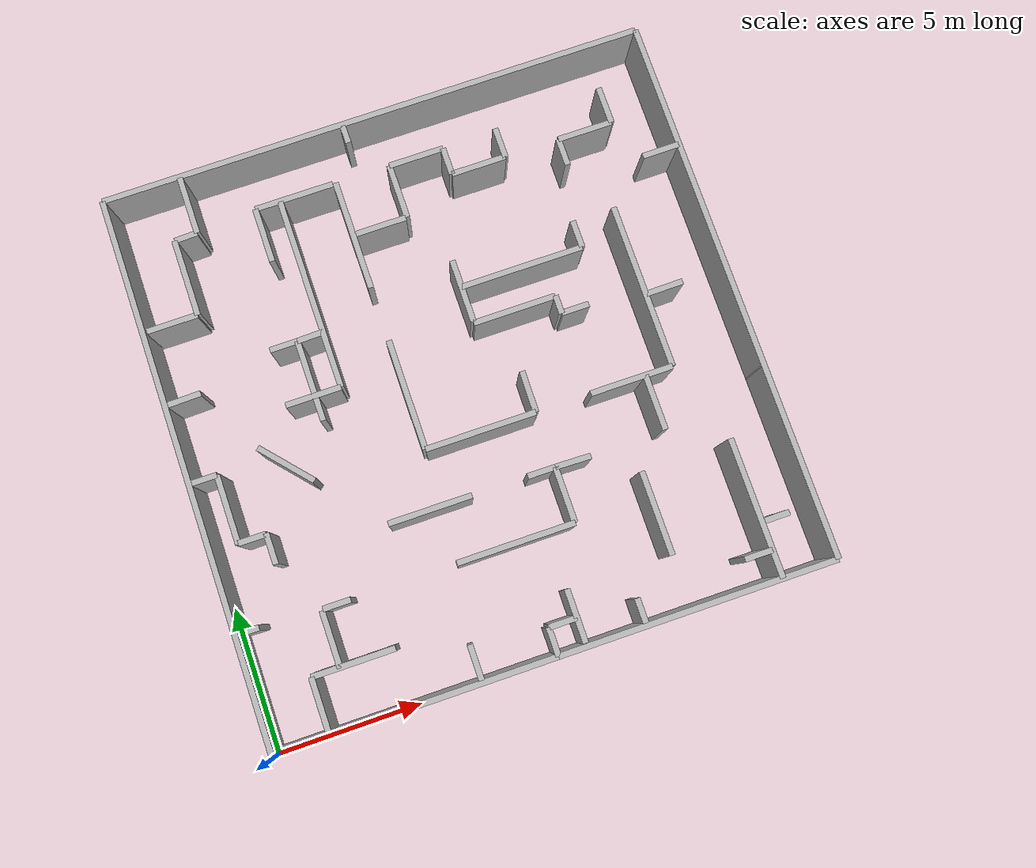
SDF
<?xml version="1.0" ?>
<sdf version="1.6">
  <model name="maze4_lines">
    <static>true</static>
    <link name="wall_0">
      <pose>4.919999999999999 0.12 1.25 0 0 0.0</pose>
      <collision name="collision">
        <geometry>
          <box><size>9.6 0.2 2.5</size></box>
        </geometry>
      </collision>
      <visual name="visual">
        <geometry>
          <box><size>9.6 0.2 2.5</size></box>
        </geometry>
        <material>
          <ambient>0.7 0.7 0.7 1</ambient>
          <diffuse>0.7 0.7 0.7 1</diffuse>
        </material>
      </visual>
    </link>
    <link name="wall_1">
      <pose>14.52 0.12 1.25 0 0 0.0</pose>
      <collision name="collision">
        <geometry>
          <box><size>9.600000000000001 0.2 2.5</size></box>
        </geometry>
      </collision>
      <visual name="visual">
        <geometry>
          <box><size>9.600000000000001 0.2 2.5</size></box>
        </geometry>
        <material>
          <ambient>0.7 0.7 0.7 1</ambient>
          <diffuse>0.7 0.7 0.7 1</diffuse>
        </material>
      </visual>
    </link>
    <link name="wall_2">
      <pose>10.2 1.08 1.25 0 0 0.0</pose>
      <collision name="collision">
        <geometry>
          <box><size>0.9600000000000009 0.2 2.5</size></box>
        </geometry>
      </collision>
      <visual name="visual">
        <geometry>
          <box><size>0.9600000000000009 0.2 2.5</size></box>
        </geometry>
        <material>
          <ambient>0.7 0.7 0.7 1</ambient>
          <diffuse>0.7 0.7 0.7 1</diffuse>
        </material>
      </visual>
    </link>
    <link name="wall_3">
      <pose>16.919999999999998 1.08 1.25 0 0 0.0</pose>
      <collision name="collision">
        <geometry>
          <box><size>0.9600000000000009 0.2 2.5</size></box>
        </geometry>
      </collision>
      <visual name="visual">
        <geometry>
          <box><size>0.9600000000000009 0.2 2.5</size></box>
        </geometry>
        <material>
          <ambient>0.7 0.7 0.7 1</ambient>
          <diffuse>0.7 0.7 0.7 1</diffuse>
        </material>
      </visual>
    </link>
    <link name="wall_4">
      <pose>3.45000069 2.04 1.25 0 0 0.0</pose>
      <collision name="collision">
        <geometry>
          <box><size>2.8509105000000003 0.2 2.5</size></box>
        </geometry>
      </collision>
      <visual name="visual">
        <geometry>
          <box><size>2.8509105000000003 0.2 2.5</size></box>
        </geometry>
        <material>
          <ambient>0.7 0.7 0.7 1</ambient>
          <diffuse>0.7 0.7 0.7 1</diffuse>
        </material>
      </visual>
    </link>
    <link name="wall_5">
      <pose>17.88 2.04 1.25 0 0 0.0</pose>
      <collision name="collision">
        <geometry>
          <box><size>0.9600000000000009 0.2 2.5</size></box>
        </geometry>
      </collision>
      <visual name="visual">
        <geometry>
          <box><size>0.9600000000000009 0.2 2.5</size></box>
        </geometry>
        <material>
          <ambient>0.7 0.7 0.7 1</ambient>
          <diffuse>0.7 0.7 0.7 1</diffuse>
        </material>
      </visual>
    </link>
    <link name="wall_6">
      <pose>3.5148482999999997 3.96 1.25 0 0 0.0</pose>
      <collision name="collision">
        <geometry>
          <box><size>0.9508737599999995 0.2 2.5</size></box>
        </geometry>
      </collision>
      <visual name="visual">
        <geometry>
          <box><size>0.9508737599999995 0.2 2.5</size></box>
        </geometry>
        <material>
          <ambient>0.7 0.7 0.7 1</ambient>
          <diffuse>0.7 0.7 0.7 1</diffuse>
        </material>
      </visual>
    </link>
    <link name="wall_7">
      <pose>9.6231039 3.96 1.25 0 0 0.0</pose>
      <collision name="collision">
        <geometry>
          <box><size>4.0690218 0.2 2.5</size></box>
        </geometry>
      </collision>
      <visual name="visual">
        <geometry>
          <box><size>4.0690218 0.2 2.5</size></box>
        </geometry>
        <material>
          <ambient>0.7 0.7 0.7 1</ambient>
          <diffuse>0.7 0.7 0.7 1</diffuse>
        </material>
      </visual>
    </link>
    <link name="wall_8">
      <pose>0.6000000000000001 9.191194199999998 1.25 0 0 0.0</pose>
      <collision name="collision">
        <geometry>
          <box><size>0.9600000000000001 0.2 2.5</size></box>
        </geometry>
      </collision>
      <visual name="visual">
        <geometry>
          <box><size>0.9600000000000001 0.2 2.5</size></box>
        </geometry>
        <material>
          <ambient>0.7 0.7 0.7 1</ambient>
          <diffuse>0.7 0.7 0.7 1</diffuse>
        </material>
      </visual>
    </link>
    <link name="wall_9">
      <pose>7.32 5.88 1.25 0 0 0.0</pose>
      <collision name="collision">
        <geometry>
          <box><size>2.88 0.2 2.5</size></box>
        </geometry>
      </collision>
      <visual name="visual">
        <geometry>
          <box><size>2.88 0.2 2.5</size></box>
        </geometry>
        <material>
          <ambient>0.7 0.7 0.7 1</ambient>
          <diffuse>0.7 0.7 0.7 1</diffuse>
        </material>
      </visual>
    </link>
    <link name="wall_10">
      <pose>11.16 5.88 1.25 0 0 0.0</pose>
      <collision name="collision">
        <geometry>
          <box><size>0.9599999999999991 0.2 2.5</size></box>
        </geometry>
      </collision>
      <visual name="visual">
        <geometry>
          <box><size>0.9599999999999991 0.2 2.5</size></box>
        </geometry>
        <material>
          <ambient>0.7 0.7 0.7 1</ambient>
          <diffuse>0.7 0.7 0.7 1</diffuse>
        </material>
      </visual>
    </link>
    <link name="wall_11">
      <pose>1.56 6.84 1.25 0 0 0.0</pose>
      <collision name="collision">
        <geometry>
          <box><size>0.96 0.2 2.5</size></box>
        </geometry>
      </collision>
      <visual name="visual">
        <geometry>
          <box><size>0.96 0.2 2.5</size></box>
        </geometry>
        <material>
          <ambient>0.7 0.7 0.7 1</ambient>
          <diffuse>0.7 0.7 0.7 1</diffuse>
        </material>
      </visual>
    </link>
    <link name="wall_12">
      <pose>9.719999999999999 7.8 1.25 0 0 0.0</pose>
      <collision name="collision">
        <geometry>
          <box><size>3.839999999999999 0.2 2.5</size></box>
        </geometry>
      </collision>
      <visual name="visual">
        <geometry>
          <box><size>3.839999999999999 0.2 2.5</size></box>
        </geometry>
        <material>
          <ambient>0.7 0.7 0.7 1</ambient>
          <diffuse>0.7 0.7 0.7 1</diffuse>
        </material>
      </visual>
    </link>
    <link name="wall_13">
      <pose>14.999999999999998 7.8 1.25 0 0 0.0</pose>
      <collision name="collision">
        <geometry>
          <box><size>2.879999999999999 0.2 2.5</size></box>
        </geometry>
      </collision>
      <visual name="visual">
        <geometry>
          <box><size>2.879999999999999 0.2 2.5</size></box>
        </geometry>
        <material>
          <ambient>0.7 0.7 0.7 1</ambient>
          <diffuse>0.7 0.7 0.7 1</diffuse>
        </material>
      </visual>
    </link>
    <link name="wall_14">
      <pose>4.8571979999999995 10.6575822 1.25 0 0 0.0</pose>
      <collision name="collision">
        <geometry>
          <box><size>1.9199999999999995 0.2 2.5</size></box>
        </geometry>
      </collision>
      <visual name="visual">
        <geometry>
          <box><size>1.9199999999999995 0.2 2.5</size></box>
        </geometry>
        <material>
          <ambient>0.7 0.7 0.7 1</ambient>
          <diffuse>0.7 0.7 0.7 1</diffuse>
        </material>
      </visual>
    </link>
    <link name="wall_15">
      <pose>14.04 10.68 1.25 0 0 0.0</pose>
      <collision name="collision">
        <geometry>
          <box><size>0.9600000000000009 0.2 2.5</size></box>
        </geometry>
      </collision>
      <visual name="visual">
        <geometry>
          <box><size>0.9600000000000009 0.2 2.5</size></box>
        </geometry>
        <material>
          <ambient>0.7 0.7 0.7 1</ambient>
          <diffuse>0.7 0.7 0.7 1</diffuse>
        </material>
      </visual>
    </link>
    <link name="wall_16">
      <pose>12.1079556 11.297727599999998 1.25 0 0 0.0</pose>
      <collision name="collision">
        <geometry>
          <box><size>2.880000000000001 0.2 2.5</size></box>
        </geometry>
      </collision>
      <visual name="visual">
        <geometry>
          <box><size>2.880000000000001 0.2 2.5</size></box>
        </geometry>
        <material>
          <ambient>0.7 0.7 0.7 1</ambient>
          <diffuse>0.7 0.7 0.7 1</diffuse>
        </material>
      </visual>
    </link>
    <link name="wall_17">
      <pose>4.4399999999999995 12.6 1.25 0 0 0.0</pose>
      <collision name="collision">
        <geometry>
          <box><size>0.96 0.2 2.5</size></box>
        </geometry>
      </collision>
      <visual name="visual">
        <geometry>
          <box><size>0.96 0.2 2.5</size></box>
        </geometry>
        <material>
          <ambient>0.7 0.7 0.7 1</ambient>
          <diffuse>0.7 0.7 0.7 1</diffuse>
        </material>
      </visual>
    </link>
    <link name="wall_18">
      <pose>12.822375300000001 12.6 1.25 0 0 0.0</pose>
      <collision name="collision">
        <geometry>
          <box><size>4.297317 0.2 2.5</size></box>
        </geometry>
      </collision>
      <visual name="visual">
        <geometry>
          <box><size>4.297317 0.2 2.5</size></box>
        </geometry>
        <material>
          <ambient>0.7 0.7 0.7 1</ambient>
          <diffuse>0.7 0.7 0.7 1</diffuse>
        </material>
      </visual>
    </link>
    <link name="wall_19">
      <pose>1.151477508 14.52 1.25 0 0 0.0</pose>
      <collision name="collision">
        <geometry>
          <box><size>1.777044984 0.2 2.5</size></box>
        </geometry>
      </collision>
      <visual name="visual">
        <geometry>
          <box><size>1.777044984 0.2 2.5</size></box>
        </geometry>
        <material>
          <ambient>0.7 0.7 0.7 1</ambient>
          <diffuse>0.7 0.7 0.7 1</diffuse>
        </material>
      </visual>
    </link>
    <link name="wall_20">
      <pose>8.7771369 15.479999999999999 1.25 0 0 0.0</pose>
      <collision name="collision">
        <geometry>
          <box><size>1.7849730000000008 0.2 2.5</size></box>
        </geometry>
      </collision>
      <visual name="visual">
        <geometry>
          <box><size>1.7849730000000008 0.2 2.5</size></box>
        </geometry>
        <material>
          <ambient>0.7 0.7 0.7 1</ambient>
          <diffuse>0.7 0.7 0.7 1</diffuse>
        </material>
      </visual>
    </link>
    <link name="wall_21">
      <pose>12.599999999999998 16.439999999999998 1.25 0 0 0.0</pose>
      <collision name="collision">
        <geometry>
          <box><size>1.92 0.2 2.5</size></box>
        </geometry>
      </collision>
      <visual name="visual">
        <geometry>
          <box><size>1.92 0.2 2.5</size></box>
        </geometry>
        <material>
          <ambient>0.7 0.7 0.7 1</ambient>
          <diffuse>0.7 0.7 0.7 1</diffuse>
        </material>
      </visual>
    </link>
    <link name="wall_22">
      <pose>16.439999999999998 16.439999999999998 1.25 0 0 0.0</pose>
      <collision name="collision">
        <geometry>
          <box><size>1.92 0.2 2.5</size></box>
        </geometry>
      </collision>
      <visual name="visual">
        <geometry>
          <box><size>1.92 0.2 2.5</size></box>
        </geometry>
        <material>
          <ambient>0.7 0.7 0.7 1</ambient>
          <diffuse>0.7 0.7 0.7 1</diffuse>
        </material>
      </visual>
    </link>
    <link name="wall_23">
      <pose>6.319260869999999 17.4 1.25 0 0 0.0</pose>
      <collision name="collision">
        <geometry>
          <box><size>2.7468438599999994 0.2 2.5</size></box>
        </geometry>
      </collision>
      <visual name="visual">
        <geometry>
          <box><size>2.7468438599999994 0.2 2.5</size></box>
        </geometry>
        <material>
          <ambient>0.7 0.7 0.7 1</ambient>
          <diffuse>0.7 0.7 0.7 1</diffuse>
        </material>
      </visual>
    </link>
    <link name="wall_24">
      <pose>10.68 17.4 1.25 0 0 0.0</pose>
      <collision name="collision">
        <geometry>
          <box><size>1.92 0.2 2.5</size></box>
        </geometry>
      </collision>
      <visual name="visual">
        <geometry>
          <box><size>1.92 0.2 2.5</size></box>
        </geometry>
        <material>
          <ambient>0.7 0.7 0.7 1</ambient>
          <diffuse>0.7 0.7 0.7 1</diffuse>
        </material>
      </visual>
    </link>
    <link name="wall_25">
      <pose>9.72 19.32 1.25 0 0 0.0</pose>
      <collision name="collision">
        <geometry>
          <box><size>19.2 0.2 2.5</size></box>
        </geometry>
      </collision>
      <visual name="visual">
        <geometry>
          <box><size>19.2 0.2 2.5</size></box>
        </geometry>
        <material>
          <ambient>0.7 0.7 0.7 1</ambient>
          <diffuse>0.7 0.7 0.7 1</diffuse>
        </material>
      </visual>
    </link>
    <link name="wall_26">
      <pose>0.12 9.72 1.25 0 0 1.5707963267948966</pose>
      <collision name="collision">
        <geometry>
          <box><size>19.2 0.2 2.5</size></box>
        </geometry>
      </collision>
      <visual name="visual">
        <geometry>
          <box><size>19.2 0.2 2.5</size></box>
        </geometry>
        <material>
          <ambient>0.7 0.7 0.7 1</ambient>
          <diffuse>0.7 0.7 0.7 1</diffuse>
        </material>
      </visual>
    </link>
    <link name="wall_27">
      <pose>1.08 7.998025799999999 1.25 0 0 1.5707963267948966</pose>
      <collision name="collision">
        <geometry>
          <box><size>2.3863367999999987 0.2 2.5</size></box>
        </geometry>
      </collision>
      <visual name="visual">
        <geometry>
          <box><size>2.3863367999999987 0.2 2.5</size></box>
        </geometry>
        <material>
          <ambient>0.7 0.7 0.7 1</ambient>
          <diffuse>0.7 0.7 0.7 1</diffuse>
        </material>
      </visual>
    </link>
    <link name="wall_28">
      <pose>2.04 1.08 1.25 0 0 1.5707963267948966</pose>
      <collision name="collision">
        <geometry>
          <box><size>1.92 0.2 2.5</size></box>
        </geometry>
      </collision>
      <visual name="visual">
        <geometry>
          <box><size>1.92 0.2 2.5</size></box>
        </geometry>
        <material>
          <ambient>0.7 0.7 0.7 1</ambient>
          <diffuse>0.7 0.7 0.7 1</diffuse>
        </material>
      </visual>
    </link>
    <link name="wall_29">
      <pose>2.04 6.33448815 1.25 0 0 1.5707963267948966</pose>
      <collision name="collision">
        <geometry>
          <box><size>1.0644933000000005 0.2 2.5</size></box>
        </geometry>
      </collision>
      <visual name="visual">
        <geometry>
          <box><size>1.0644933000000005 0.2 2.5</size></box>
        </geometry>
        <material>
          <ambient>0.7 0.7 0.7 1</ambient>
          <diffuse>0.7 0.7 0.7 1</diffuse>
        </material>
      </visual>
    </link>
    <link name="wall_30">
      <pose>2.04 15.863920499999999 1.25 0 0 1.5707963267948966</pose>
      <collision name="collision">
        <geometry>
          <box><size>2.6938961999999975 0.2 2.5</size></box>
        </geometry>
      </collision>
      <visual name="visual">
        <geometry>
          <box><size>2.6938961999999975 0.2 2.5</size></box>
        </geometry>
        <material>
          <ambient>0.7 0.7 0.7 1</ambient>
          <diffuse>0.7 0.7 0.7 1</diffuse>
        </material>
      </visual>
    </link>
    <link name="wall_31">
      <pose>2.84081358 18.2605965 1.25 0 0 1.5707963267948966</pose>
      <collision name="collision">
        <geometry>
          <box><size>2.0434481999999967 0.2 2.5</size></box>
        </geometry>
      </collision>
      <visual name="visual">
        <geometry>
          <box><size>2.0434481999999967 0.2 2.5</size></box>
        </geometry>
        <material>
          <ambient>0.7 0.7 0.7 1</ambient>
          <diffuse>0.7 0.7 0.7 1</diffuse>
        </material>
      </visual>
    </link>
    <link name="wall_32">
      <pose>3.0 2.9710309799999997 1.25 0 0 1.5707963267948966</pose>
      <collision name="collision">
        <geometry>
          <box><size>1.9027796399999994 0.2 2.5</size></box>
        </geometry>
      </collision>
      <visual name="visual">
        <geometry>
          <box><size>1.9027796399999994 0.2 2.5</size></box>
        </geometry>
        <material>
          <ambient>0.7 0.7 0.7 1</ambient>
          <diffuse>0.7 0.7 0.7 1</diffuse>
        </material>
      </visual>
    </link>
    <link name="wall_33">
      <pose>4.94583894 16.439999999999998 1.25 0 0 1.5707963267948966</pose>
      <collision name="collision">
        <geometry>
          <box><size>1.92 0.2 2.5</size></box>
        </geometry>
      </collision>
      <visual name="visual">
        <geometry>
          <box><size>1.92 0.2 2.5</size></box>
        </geometry>
        <material>
          <ambient>0.7 0.7 0.7 1</ambient>
          <diffuse>0.7 0.7 0.7 1</diffuse>
        </material>
      </visual>
    </link>
    <link name="wall_34">
      <pose>4.92 11.1929832 1.25 0 0 1.5707963267948966</pose>
      <collision name="collision">
        <geometry>
          <box><size>2.8140336 0.2 2.5</size></box>
        </geometry>
      </collision>
      <visual name="visual">
        <geometry>
          <box><size>2.8140336 0.2 2.5</size></box>
        </geometry>
        <material>
          <ambient>0.7 0.7 0.7 1</ambient>
          <diffuse>0.7 0.7 0.7 1</diffuse>
        </material>
      </visual>
    </link>
    <link name="wall_35">
      <pose>5.817197999999999 14.0175822 1.25 0 0 1.5707963267948966</pose>
      <collision name="collision">
        <geometry>
          <box><size>6.719999999999999 0.2 2.5</size></box>
        </geometry>
      </collision>
      <visual name="visual">
        <geometry>
          <box><size>6.719999999999999 0.2 2.5</size></box>
        </geometry>
        <material>
          <ambient>0.7 0.7 0.7 1</ambient>
          <diffuse>0.7 0.7 0.7 1</diffuse>
        </material>
      </visual>
    </link>
    <link name="wall_36">
      <pose>7.8 9.719999999999999 1.25 0 0 1.5707963267948966</pose>
      <collision name="collision">
        <geometry>
          <box><size>3.839999999999999 0.2 2.5</size></box>
        </geometry>
      </collision>
      <visual name="visual">
        <geometry>
          <box><size>3.839999999999999 0.2 2.5</size></box>
        </geometry>
        <material>
          <ambient>0.7 0.7 0.7 1</ambient>
          <diffuse>0.7 0.7 0.7 1</diffuse>
        </material>
      </visual>
    </link>
    <link name="wall_37">
      <pose>7.8 15.479339699999999 1.25 0 0 1.5707963267948966</pose>
      <collision name="collision">
        <geometry>
          <box><size>3.8585513999999996 0.2 2.5</size></box>
        </geometry>
      </collision>
      <visual name="visual">
        <geometry>
          <box><size>3.8585513999999996 0.2 2.5</size></box>
        </geometry>
        <material>
          <ambient>0.7 0.7 0.7 1</ambient>
          <diffuse>0.7 0.7 0.7 1</diffuse>
        </material>
      </visual>
    </link>
    <link name="wall_38">
      <pose>9.719999999999999 0.6000000000000001 1.25 0 0 1.5707963267948966</pose>
      <collision name="collision">
        <geometry>
          <box><size>0.9600000000000001 0.2 2.5</size></box>
        </geometry>
      </collision>
      <visual name="visual">
        <geometry>
          <box><size>0.9600000000000001 0.2 2.5</size></box>
        </geometry>
        <material>
          <ambient>0.7 0.7 0.7 1</ambient>
          <diffuse>0.7 0.7 0.7 1</diffuse>
        </material>
      </visual>
    </link>
    <link name="wall_39">
      <pose>9.719999999999999 16.439999999999998 1.25 0 0 1.5707963267948966</pose>
      <collision name="collision">
        <geometry>
          <box><size>1.92 0.2 2.5</size></box>
        </geometry>
      </collision>
      <visual name="visual">
        <geometry>
          <box><size>1.92 0.2 2.5</size></box>
        </geometry>
        <material>
          <ambient>0.7 0.7 0.7 1</ambient>
          <diffuse>0.7 0.7 0.7 1</diffuse>
        </material>
      </visual>
    </link>
    <link name="wall_40">
      <pose>10.68 1.136670456 1.25 0 0 1.5707963267948966</pose>
      <collision name="collision">
        <geometry>
          <box><size>1.806659088 0.2 2.5</size></box>
        </geometry>
      </collision>
      <visual name="visual">
        <geometry>
          <box><size>1.806659088 0.2 2.5</size></box>
        </geometry>
        <material>
          <ambient>0.7 0.7 0.7 1</ambient>
          <diffuse>0.7 0.7 0.7 1</diffuse>
        </material>
      </visual>
    </link>
    <link name="wall_41">
      <pose>10.68 12.455243099999999 1.25 0 0 1.5707963267948966</pose>
      <collision name="collision">
        <geometry>
          <box><size>2.2095138 0.2 2.5</size></box>
        </geometry>
      </collision>
      <visual name="visual">
        <geometry>
          <box><size>2.2095138 0.2 2.5</size></box>
        </geometry>
        <material>
          <ambient>0.7 0.7 0.7 1</ambient>
          <diffuse>0.7 0.7 0.7 1</diffuse>
        </material>
      </visual>
    </link>
    <link name="wall_42">
      <pose>11.639999999999999 4.92 1.25 0 0 1.5707963267948966</pose>
      <collision name="collision">
        <geometry>
          <box><size>1.92 0.2 2.5</size></box>
        </geometry>
      </collision>
      <visual name="visual">
        <geometry>
          <box><size>1.92 0.2 2.5</size></box>
        </geometry>
        <material>
          <ambient>0.7 0.7 0.7 1</ambient>
          <diffuse>0.7 0.7 0.7 1</diffuse>
        </material>
      </visual>
    </link>
    <link name="wall_43">
      <pose>11.639999999999999 16.919999999999998 1.25 0 0 1.5707963267948966</pose>
      <collision name="collision">
        <geometry>
          <box><size>0.9600000000000009 0.2 2.5</size></box>
        </geometry>
      </collision>
      <visual name="visual">
        <geometry>
          <box><size>0.9600000000000009 0.2 2.5</size></box>
        </geometry>
        <material>
          <ambient>0.7 0.7 0.7 1</ambient>
          <diffuse>0.7 0.7 0.7 1</diffuse>
        </material>
      </visual>
    </link>
    <link name="wall_44">
      <pose>13.559999999999999 10.9842915 1.25 0 0 1.5707963267948966</pose>
      <collision name="collision">
        <geometry>
          <box><size>0.6397109999999984 0.2 2.5</size></box>
        </geometry>
      </collision>
      <visual name="visual">
        <geometry>
          <box><size>0.6397109999999984 0.2 2.5</size></box>
        </geometry>
        <material>
          <ambient>0.7 0.7 0.7 1</ambient>
          <diffuse>0.7 0.7 0.7 1</diffuse>
        </material>
      </visual>
    </link>
    <link name="wall_45">
      <pose>13.559999999999999 16.957161299999996 1.25 0 0 1.5707963267948966</pose>
      <collision name="collision">
        <geometry>
          <box><size>1.0864194000000005 0.2 2.5</size></box>
        </geometry>
      </collision>
      <visual name="visual">
        <geometry>
          <box><size>1.0864194000000005 0.2 2.5</size></box>
        </geometry>
        <material>
          <ambient>0.7 0.7 0.7 1</ambient>
          <diffuse>0.7 0.7 0.7 1</diffuse>
        </material>
      </visual>
    </link>
    <link name="wall_46">
      <pose>14.271467999999999 3.39671688 1.25 0 0 1.5707963267948966</pose>
      <collision name="collision">
        <geometry>
          <box><size>2.8799997599999996 0.2 2.5</size></box>
        </geometry>
      </collision>
      <visual name="visual">
        <geometry>
          <box><size>2.8799997599999996 0.2 2.5</size></box>
        </geometry>
        <material>
          <ambient>0.7 0.7 0.7 1</ambient>
          <diffuse>0.7 0.7 0.7 1</diffuse>
        </material>
      </visual>
    </link>
    <link name="wall_47">
      <pose>15.479999999999999 6.84 1.25 0 0 1.5707963267948966</pose>
      <collision name="collision">
        <geometry>
          <box><size>1.92 0.2 2.5</size></box>
        </geometry>
      </collision>
      <visual name="visual">
        <geometry>
          <box><size>1.92 0.2 2.5</size></box>
        </geometry>
        <material>
          <ambient>0.7 0.7 0.7 1</ambient>
          <diffuse>0.7 0.7 0.7 1</diffuse>
        </material>
      </visual>
    </link>
    <link name="wall_48">
      <pose>14.9710338 13.079999999999998 1.25 0 0 1.5707963267948966</pose>
      <collision name="collision">
        <geometry>
          <box><size>0.9599999999999991 0.2 2.5</size></box>
        </geometry>
      </collision>
      <visual name="visual">
        <geometry>
          <box><size>0.9599999999999991 0.2 2.5</size></box>
        </geometry>
        <material>
          <ambient>0.7 0.7 0.7 1</ambient>
          <diffuse>0.7 0.7 0.7 1</diffuse>
        </material>
      </visual>
    </link>
    <link name="wall_49">
      <pose>15.479999999999999 15.959999999999997 1.25 0 0 1.5707963267948966</pose>
      <collision name="collision">
        <geometry>
          <box><size>0.9599999999999991 0.2 2.5</size></box>
        </geometry>
      </collision>
      <visual name="visual">
        <geometry>
          <box><size>0.9599999999999991 0.2 2.5</size></box>
        </geometry>
        <material>
          <ambient>0.7 0.7 0.7 1</ambient>
          <diffuse>0.7 0.7 0.7 1</diffuse>
        </material>
      </visual>
    </link>
    <link name="wall_50">
      <pose>16.439999999999998 10.68 1.25 0 0 1.5707963267948966</pose>
      <collision name="collision">
        <geometry>
          <box><size>5.759999999999999 0.2 2.5</size></box>
        </geometry>
      </collision>
      <visual name="visual">
        <geometry>
          <box><size>5.759999999999999 0.2 2.5</size></box>
        </geometry>
        <material>
          <ambient>0.7 0.7 0.7 1</ambient>
          <diffuse>0.7 0.7 0.7 1</diffuse>
        </material>
      </visual>
    </link>
    <link name="wall_51">
      <pose>17.4 2.52 1.25 0 0 1.5707963267948966</pose>
      <collision name="collision">
        <geometry>
          <box><size>4.8 0.2 2.5</size></box>
        </geometry>
      </collision>
      <visual name="visual">
        <geometry>
          <box><size>4.8 0.2 2.5</size></box>
        </geometry>
        <material>
          <ambient>0.7 0.7 0.7 1</ambient>
          <diffuse>0.7 0.7 0.7 1</diffuse>
        </material>
      </visual>
    </link>
    <link name="wall_52">
      <pose>17.4 17.0807097 1.25 0 0 1.5707963267948966</pose>
      <collision name="collision">
        <geometry>
          <box><size>1.3048974000000015 0.2 2.5</size></box>
        </geometry>
      </collision>
      <visual name="visual">
        <geometry>
          <box><size>1.3048974000000015 0.2 2.5</size></box>
        </geometry>
        <material>
          <ambient>0.7 0.7 0.7 1</ambient>
          <diffuse>0.7 0.7 0.7 1</diffuse>
        </material>
      </visual>
    </link>
    <link name="wall_53">
      <pose>19.32 9.72 1.25 0 0 1.5707963267948966</pose>
      <collision name="collision">
        <geometry>
          <box><size>19.2 0.2 2.5</size></box>
        </geometry>
      </collision>
      <visual name="visual">
        <geometry>
          <box><size>19.2 0.2 2.5</size></box>
        </geometry>
        <material>
          <ambient>0.7 0.7 0.7 1</ambient>
          <diffuse>0.7 0.7 0.7 1</diffuse>
        </material>
      </visual>
    </link>
    <link name="wall_54">
      <pose>3.33052872 8.7999735 1.25 0 0 -0.846401538052488</pose>
      <collision name="collision">
        <geometry>
          <box><size>2.1730421265760866 0.2 2.5</size></box>
        </geometry>
      </collision>
      <visual name="visual">
        <geometry>
          <box><size>2.1730421265760866 0.2 2.5</size></box>
        </geometry>
        <material>
          <ambient>0.7 0.7 0.7 1</ambient>
          <diffuse>0.7 0.7 0.7 1</diffuse>
        </material>
      </visual>
    </link>
    <link name="wall_55">
      <pose>17.103248999999998 10.390574699999998 1.25 0 0 0.012418603179212334</pose>
      <collision name="collision">
        <geometry>
          <box><size>1.3062191223755522 0.2 2.5</size></box>
        </geometry>
      </collision>
      <visual name="visual">
        <geometry>
          <box><size>1.3062191223755522 0.2 2.5</size></box>
        </geometry>
        <material>
          <ambient>0.7 0.7 0.7 1</ambient>
          <diffuse>0.7 0.7 0.7 1</diffuse>
        </material>
      </visual>
    </link>
    <link name="wall_56">
      <pose>19.2734757 6.773888999999999 1.25 0 0 -2.997380824785243</pose>
      <collision name="collision">
        <geometry>
          <box><size>0.0915327573173647 0.2 2.5</size></box>
        </geometry>
      </collision>
      <visual name="visual">
        <geometry>
          <box><size>0.0915327573173647 0.2 2.5</size></box>
        </geometry>
        <material>
          <ambient>0.7 0.7 0.7 1</ambient>
          <diffuse>0.7 0.7 0.7 1</diffuse>
        </material>
      </visual>
    </link>
    <link name="wall_57">
      <pose>18.650826600000002 14.9470572 1.25 0 0 -3.1361439156966977</pose>
      <collision name="collision">
        <geometry>
          <box><size>1.2965268460796038 0.2 2.5</size></box>
        </geometry>
      </collision>
      <visual name="visual">
        <geometry>
          <box><size>1.2965268460796038 0.2 2.5</size></box>
        </geometry>
        <material>
          <ambient>0.7 0.7 0.7 1</ambient>
          <diffuse>0.7 0.7 0.7 1</diffuse>
        </material>
      </visual>
    </link>
    <link name="wall_58">
      <pose>11.6485317 8.5190229 1.25 0 0 1.5589311975642035</pose>
      <collision name="collision">
        <geometry>
          <box><size>1.4381470309106787 0.2 2.5</size></box>
        </geometry>
      </collision>
      <visual name="visual">
        <geometry>
          <box><size>1.4381470309106787 0.2 2.5</size></box>
        </geometry>
        <material>
          <ambient>0.7 0.7 0.7 1</ambient>
          <diffuse>0.7 0.7 0.7 1</diffuse>
        </material>
      </visual>
    </link>
    <link name="wall_59">
      <pose>0.5489152079999999 4.06837581 1.25 0 0 -0.016583545352267068</pose>
      <collision name="collision">
        <geometry>
          <box><size>0.7662536668192205 0.2 2.5</size></box>
        </geometry>
      </collision>
      <visual name="visual">
        <geometry>
          <box><size>0.7662536668192205 0.2 2.5</size></box>
        </geometry>
        <material>
          <ambient>0.7 0.7 0.7 1</ambient>
          <diffuse>0.7 0.7 0.7 1</diffuse>
        </material>
      </visual>
    </link>
    <link name="wall_60">
      <pose>7.149156 0.7907966369999999 1.25 0 0 1.5693063850194464</pose>
      <collision name="collision">
        <geometry>
          <box><size>1.183939320128889 0.2 2.5</size></box>
        </geometry>
      </collision>
      <visual name="visual">
        <geometry>
          <box><size>1.183939320128889 0.2 2.5</size></box>
        </geometry>
        <material>
          <ambient>0.7 0.7 0.7 1</ambient>
          <diffuse>0.7 0.7 0.7 1</diffuse>
        </material>
      </visual>
    </link>
    <link name="wall_61">
      <pose>12.720318599999999 0.6221100719999999 1.25 0 0 1.5705058706378816</pose>
      <collision name="collision">
        <geometry>
          <box><size>0.826286506854739 0.2 2.5</size></box>
        </geometry>
      </collision>
      <visual name="visual">
        <geometry>
          <box><size>0.826286506854739 0.2 2.5</size></box>
        </geometry>
        <material>
          <ambient>0.7 0.7 0.7 1</ambient>
          <diffuse>0.7 0.7 0.7 1</diffuse>
        </material>
      </visual>
    </link>
    <link name="wall_62">
      <pose>12.2544948 5.865174959999999 1.25 0 0 -0.024120895298259486</pose>
      <collision name="collision">
        <geometry>
          <box><size>1.229347210576478 0.2 2.5</size></box>
        </geometry>
      </collision>
      <visual name="visual">
        <geometry>
          <box><size>1.229347210576478 0.2 2.5</size></box>
        </geometry>
        <material>
          <ambient>0.7 0.7 0.7 1</ambient>
          <diffuse>0.7 0.7 0.7 1</diffuse>
        </material>
      </visual>
    </link>
    <link name="wall_63">
      <pose>8.651865599999999 18.9451971 1.25 0 0 -1.55820786302266</pose>
      <collision name="collision">
        <geometry>
          <box><size>0.6332631757615168 0.2 2.5</size></box>
        </geometry>
      </collision>
      <visual name="visual">
        <geometry>
          <box><size>0.6332631757615168 0.2 2.5</size></box>
        </geometry>
        <material>
          <ambient>0.7 0.7 0.7 1</ambient>
          <diffuse>0.7 0.7 0.7 1</diffuse>
        </material>
      </visual>
    </link>
    <link name="wall_64">
      <pose>2.44040679 17.224870499999998 1.25 0 0 0.034954943705708424</pose>
      <collision name="collision">
        <geometry>
          <box><size>0.801303065467028 0.2 2.5</size></box>
        </geometry>
      </collision>
      <visual name="visual">
        <geometry>
          <box><size>0.801303065467028 0.2 2.5</size></box>
        </geometry>
        <material>
          <ambient>0.7 0.7 0.7 1</ambient>
          <diffuse>0.7 0.7 0.7 1</diffuse>
        </material>
      </visual>
    </link>
    <link name="wall_65">
      <pose>0.7684958669999999 11.9354178 1.25 0 0 0.023466326727325217</pose>
      <collision name="collision">
        <geometry>
          <box><size>1.200400282138856 0.2 2.5</size></box>
        </geometry>
      </collision>
      <visual name="visual">
        <geometry>
          <box><size>1.200400282138856 0.2 2.5</size></box>
        </geometry>
        <material>
          <ambient>0.7 0.7 0.7 1</ambient>
          <diffuse>0.7 0.7 0.7 1</diffuse>
        </material>
      </visual>
    </link>
    <link name="wall_66">
      <pose>5.38317477 12.6113961 1.25 0 0 0.024599356321305717</pose>
      <collision name="collision">
        <geometry>
          <box><size>0.9266298908620703 0.2 2.5</size></box>
        </geometry>
      </collision>
      <visual name="visual">
        <geometry>
          <box><size>0.9266298908620703 0.2 2.5</size></box>
        </geometry>
        <material>
          <ambient>0.7 0.7 0.7 1</ambient>
          <diffuse>0.7 0.7 0.7 1</diffuse>
        </material>
      </visual>
    </link>
  </model>
</sdf>
